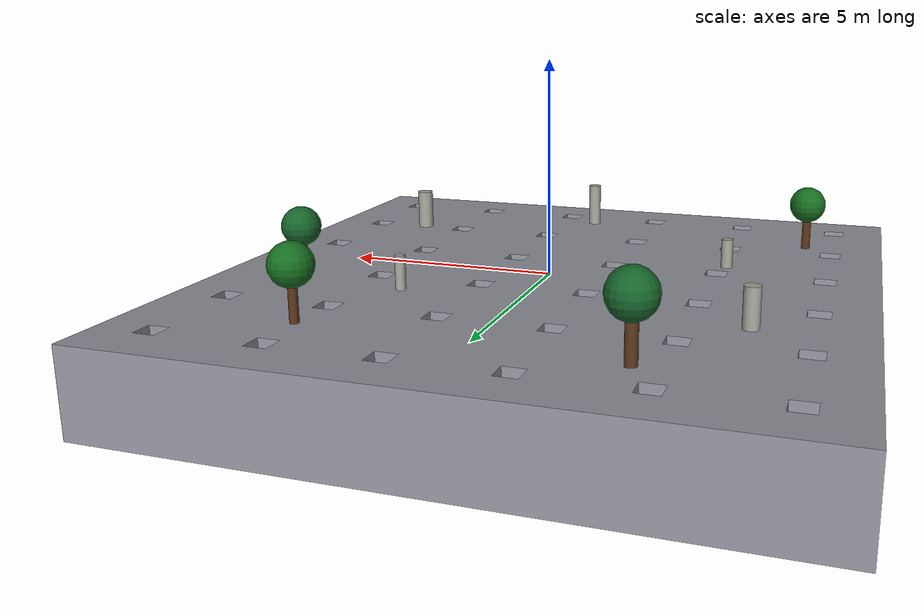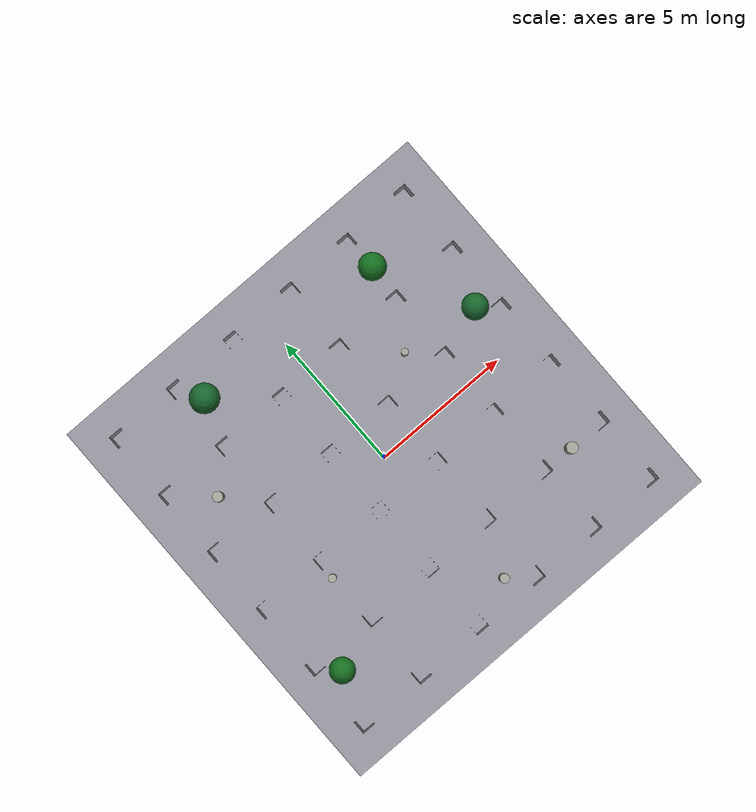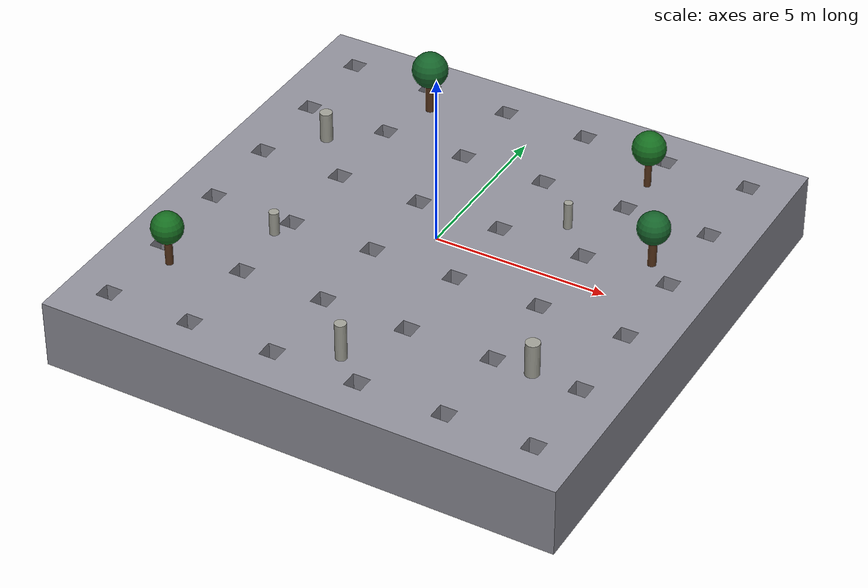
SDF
<?xml version="1.0" ?>
<sdf version="1.6">
  <world name="nagetive_terrain_world">

    <scene>
      <ambient>0.6 0.6 0.6 1</ambient>
      <background>0.7 0.7 0.7 1</background>
      <shadows>true</shadows>
    </scene>

    <light type="directional" name="sun">
      <cast_shadows>true</cast_shadows>
      <pose>0 0 50 0 0 0</pose> <diffuse>0.85 0.8 0.75 1</diffuse>
      <specular>0.2 0.2 0.2 1</specular>
      <attenuation>
        <range>1000</range> <constant>0.9</constant>
        <linear>0.01</linear>
        <quadratic>0.001</quadratic>
      </attenuation>
      <direction>-0.5 0.2 -0.9</direction>
    </light>

    <physics type="ode">
      <max_step_size>0.001</max_step_size> <real_time_factor>1</real_time_factor> <real_time_update_rate>1000</real_time_update_rate> <gravity>0 0 -9.81</gravity> </physics>

    <include>
      <uri>model://nagetive_terrain</uri>
      <pose>0 0 0 0 0 0</pose>
    </include>

    <!-- Moderately sparse obstacle field.
         Positions are placed on pre-checked locally flat patches and leave
         multiple 0.5 m x 0.5 m landing footprints clear. -->
    <model name="landing_tree_01">
      <static>true</static>
      <pose>-5.6 -4.4 0.0 0 0 0</pose>
      <link name="link">
        <collision name="trunk_collision">
          <pose>0 0 0.45 0 0 0</pose>
          <geometry><cylinder><radius>0.11</radius><length>0.9</length></cylinder></geometry>
        </collision>
        <visual name="trunk_visual">
          <pose>0 0 0.45 0 0 0</pose>
          <geometry><cylinder><radius>0.11</radius><length>0.9</length></cylinder></geometry>
          <material><ambient>0.28 0.16 0.08 1</ambient><diffuse>0.34 0.20 0.10 1</diffuse></material>
        </visual>
        <visual name="canopy_visual">
          <pose>0 0 1.15 0 0 0</pose>
          <geometry><sphere><radius>0.45</radius></sphere></geometry>
          <material><ambient>0.05 0.28 0.08 1</ambient><diffuse>0.08 0.42 0.12 1</diffuse></material>
        </visual>
      </link>
    </model>

    <model name="landing_tree_02">
      <static>true</static>
      <pose>-3.2 5.3 0.0 0 0 0</pose>
      <link name="link">
        <collision name="trunk_collision">
          <pose>0 0 0.55 0 0 0</pose>
          <geometry><cylinder><radius>0.13</radius><length>1.1</length></cylinder></geometry>
        </collision>
        <visual name="trunk_visual">
          <pose>0 0 0.55 0 0 0</pose>
          <geometry><cylinder><radius>0.13</radius><length>1.1</length></cylinder></geometry>
          <material><ambient>0.28 0.16 0.08 1</ambient><diffuse>0.34 0.20 0.10 1</diffuse></material>
        </visual>
        <visual name="canopy_visual">
          <pose>0 0 1.35 0 0 0</pose>
          <geometry><sphere><radius>0.52</radius></sphere></geometry>
          <material><ambient>0.05 0.26 0.10 1</ambient><diffuse>0.08 0.38 0.16 1</diffuse></material>
        </visual>
      </link>
    </model>

    <model name="landing_tree_03">
      <static>true</static>
      <pose>3.8 5.0 0.0 0 0 0</pose>
      <link name="link">
        <collision name="trunk_collision">
          <pose>0 0 0.50 0 0 0</pose>
          <geometry><cylinder><radius>0.10</radius><length>1.0</length></cylinder></geometry>
        </collision>
        <visual name="trunk_visual">
          <pose>0 0 0.50 0 0 0</pose>
          <geometry><cylinder><radius>0.10</radius><length>1.0</length></cylinder></geometry>
          <material><ambient>0.28 0.16 0.08 1</ambient><diffuse>0.34 0.20 0.10 1</diffuse></material>
        </visual>
        <visual name="canopy_visual">
          <pose>0 0 1.22 0 0 0</pose>
          <geometry><sphere><radius>0.48</radius></sphere></geometry>
          <material><ambient>0.05 0.28 0.08 1</ambient><diffuse>0.08 0.42 0.12 1</diffuse></material>
        </visual>
      </link>
    </model>

    <model name="landing_tree_04">
      <static>true</static>
      <pose>5.5 1.8 0.0 0 0 0</pose>
      <link name="link">
        <collision name="trunk_collision">
          <pose>0 0 0.48 0 0 0</pose>
          <geometry><cylinder><radius>0.12</radius><length>0.96</length></cylinder></geometry>
        </collision>
        <visual name="trunk_visual">
          <pose>0 0 0.48 0 0 0</pose>
          <geometry><cylinder><radius>0.12</radius><length>0.96</length></cylinder></geometry>
          <material><ambient>0.28 0.16 0.08 1</ambient><diffuse>0.34 0.20 0.10 1</diffuse></material>
        </visual>
        <visual name="canopy_visual">
          <pose>0 0 1.18 0 0 0</pose>
          <geometry><sphere><radius>0.46</radius></sphere></geometry>
          <material><ambient>0.05 0.26 0.10 1</ambient><diffuse>0.08 0.38 0.16 1</diffuse></material>
        </visual>
      </link>
    </model>

    <model name="landing_cylinder_01">
      <static>true</static>
      <pose>-5.0 2.6 0.0 0 0 0</pose>
      <link name="link">
        <collision name="collision"><pose>0 0 0.45 0 0 0</pose><geometry><cylinder><radius>0.18</radius><length>0.9</length></cylinder></geometry></collision>
        <visual name="visual"><pose>0 0 0.45 0 0 0</pose><geometry><cylinder><radius>0.18</radius><length>0.9</length></cylinder></geometry><material><ambient>0.45 0.45 0.42 1</ambient><diffuse>0.62 0.62 0.58 1</diffuse></material></visual>
      </link>
    </model>

    <model name="landing_cylinder_02">
      <static>true</static>
      <pose>-3.9 -1.9 0.0 0 0 0</pose>
      <link name="link">
        <collision name="collision"><pose>0 0 0.35 0 0 0</pose><geometry><cylinder><radius>0.14</radius><length>0.7</length></cylinder></geometry></collision>
        <visual name="visual"><pose>0 0 0.35 0 0 0</pose><geometry><cylinder><radius>0.14</radius><length>0.7</length></cylinder></geometry><material><ambient>0.45 0.45 0.42 1</ambient><diffuse>0.62 0.62 0.58 1</diffuse></material></visual>
      </link>
    </model>

    <model name="landing_cylinder_03">
      <static>true</static>
      <pose>0.4 -5.6 0.0 0 0 0</pose>
      <link name="link">
        <collision name="collision"><pose>0 0 0.55 0 0 0</pose><geometry><cylinder><radius>0.16</radius><length>1.1</length></cylinder></geometry></collision>
        <visual name="visual"><pose>0 0 0.55 0 0 0</pose><geometry><cylinder><radius>0.16</radius><length>1.1</length></cylinder></geometry><material><ambient>0.45 0.45 0.42 1</ambient><diffuse>0.62 0.62 0.58 1</diffuse></material></visual>
      </link>
    </model>

    <model name="landing_cylinder_04">
      <static>true</static>
      <pose>2.8 2.2 0.0 0 0 0</pose>
      <link name="link">
        <collision name="collision"><pose>0 0 0.40 0 0 0</pose><geometry><cylinder><radius>0.12</radius><length>0.8</length></cylinder></geometry></collision>
        <visual name="visual"><pose>0 0 0.40 0 0 0</pose><geometry><cylinder><radius>0.12</radius><length>0.8</length></cylinder></geometry><material><ambient>0.45 0.45 0.42 1</ambient><diffuse>0.62 0.62 0.58 1</diffuse></material></visual>
      </link>
    </model>

    <model name="landing_cylinder_05">
      <static>true</static>
      <pose>4.9 -3.8 0.0 0 0 0</pose>
      <link name="link">
        <collision name="collision"><pose>0 0 0.50 0 0 0</pose><geometry><cylinder><radius>0.20</radius><length>1.0</length></cylinder></geometry></collision>
        <visual name="visual"><pose>0 0 0.50 0 0 0</pose><geometry><cylinder><radius>0.20</radius><length>1.0</length></cylinder></geometry><material><ambient>0.45 0.45 0.42 1</ambient><diffuse>0.62 0.62 0.58 1</diffuse></material></visual>
      </link>
    </model>

  </world>
</sdf>

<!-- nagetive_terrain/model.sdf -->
<sdf version="1.6">
  <model name="nagetive_terrain">
    <static>true</static>
    <link name="link">
      <!-- 顶面与默认地面均在 z=0 会 Z-fighting 闪烁；整体上移 2mm -->
      <pose>0 0 0.002 0 0 0</pose>
      <collision name="collision">
        <geometry>
          <mesh>
            <uri>model://nagetive_terrain/meshes/pitted_ground_15x15x2_36holes.dae</uri>
            </mesh>
        </geometry>
        <surface>
          <friction>
            <ode>
              <mu>0.9</mu>
              <mu2>0.9</mu2>
            </ode>
          </friction>
          <contact>
            <ode>
              <kp>1e8</kp>
              <kd>1</kd>
            </ode>
          </contact>
        </surface>
      </collision>

      <visual name="visual">
        <geometry>
          <mesh>
            <uri>model://nagetive_terrain/meshes/pitted_ground_15x15x2_36holes.dae</uri>
          </mesh>
        </geometry>
        <material>
          <ambient>0.30 0.30 0.32 1</ambient>
          <diffuse>0.56 0.56 0.60 1</diffuse>
          <specular>0.095 0.095 0.10 1</specular>
          <emissive>0 0 0 1</emissive>
        </material>
      </visual>

    </link>
  </model>
</sdf>
